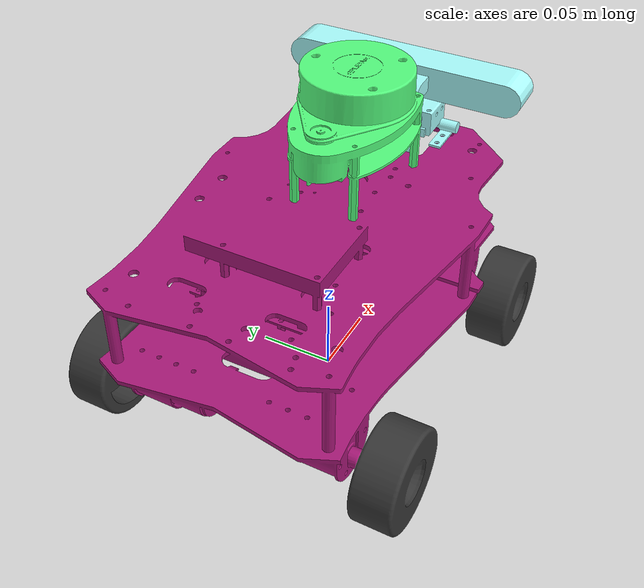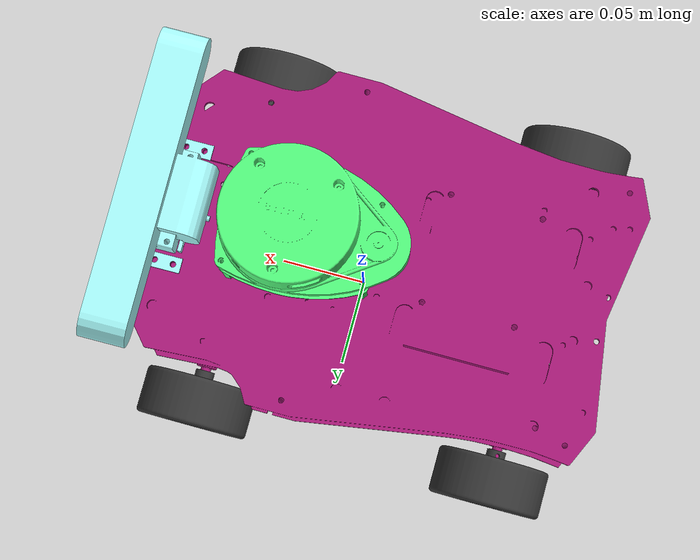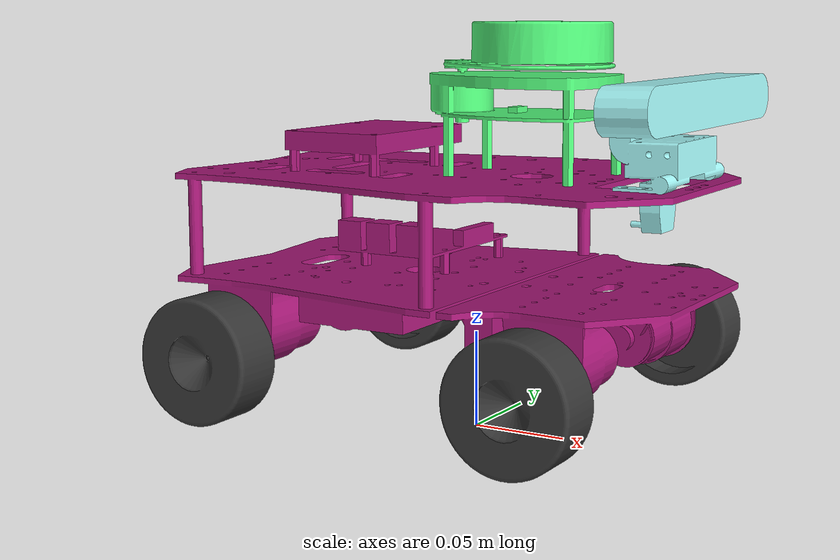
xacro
<?xml version="1.0"?>
<robot name="wheeltec" xmlns:xacro="http://www.ros.org/wiki/xacro">
  <xacro:arg name="prefix" default="" />
  <xacro:arg name="use_gazebo" default="false" />
  <xacro:property name="M_PI" value="3.1415926535897931" />
  <xacro:property name="laser_offset_x" value="0.036" />
  <xacro:property name="laser_offset_y" value="0.0015048" />
  <xacro:property name="laser_offset_z" value="0.13921" />
  <xacro:property name="laser_min_angle" value="-180" />
  <xacro:property name="laser_max_angle" value="180" />
  <xacro:property name="camera_offset_x" value="0.12521" />
  <xacro:property name="camera_offset_y" value="0.0017204" />
  <xacro:property name="camera_offset_z" value="0.10195" />
  <xacro:property name="front_wheel_position_x" value="0.0725" />
  <xacro:property name="left_wheel_position_y" value="0.08939" />
  <xacro:property name="right_wheel_position_y" value="-0.08661" />
  <xacro:property name="wheel_position_z" value="-0.026385" />
  <xacro:property name="rear_wheel_position_x" value="-0.1005" />
  <xacro:property name="wheel_mass" value="0.053774" />
  <xacro:property name="box_position_x" value="0" />
  <xacro:property name="box_position_y" value="0" />
  <xacro:property name="box_position_z" value="0.07" />
  <xacro:property name="box_length" value="0.27" />
  <xacro:property name="box_width" value="0.19" />
  <xacro:property name="box_height" value="0.075" />
  <xacro:property name="box_mass" value="0.6" />
  <xacro:property name="model_name" value="mini_4wd" />
  <xacro:property name="model_dir" value="$(find ugv_descriptions)/models/${model_name}" />
  <xacro:property name="urdf_dir" value="${model_dir}/urdf" />
  <xacro:property name="mesh_dir" value="package://ugv_descriptions/models/mini_4wd/meshes" />

  <xacro:macro name="box_inertial_matrix" params="m w h d">
    <inertial>
      <origin xyz="0 0 0.07" rpy="0 0 0" />
      <mass value="${m}" />
      <inertia ixx="${m*(d*d+h*h)/12}" ixy="0" ixz="0"
        iyy="${m*(w*w+h*h)/12}" iyz="0"
        izz="${m*(w*w+d*d)/12}" />
    </inertial>
  </xacro:macro>

  <xacro:include
    filename="${urdf_dir}/body.xacro" />

  <xacro:include
    filename="${urdf_dir}/wheels.xacro" />

  <xacro:include
    filename="${urdf_dir}/camera.xacro" />

  <xacro:include
    filename="${urdf_dir}/laser.xacro" />

  <xacro:include
    filename="${urdf_dir}/control.xacro" />

  <xacro:if value="$(arg use_gazebo)">
    <xacro:include
      filename="${urdf_dir}/gazebo.xacro" />
  </xacro:if>

</robot>

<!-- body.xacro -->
<robot xmlns:xacro="http://wiki.ros.org/xacro">

  <link name="$(arg prefix)dummy" />
  <joint name="$(arg prefix)base_link_join" type="fixed">
    <parent link="$(arg prefix)dummy" />
    <child link="$(arg prefix)base_link" />
    <origin xyz="${box_position_x} ${box_position_y} ${box_position_z}" rpy="0 0 0" />
  </joint>

  <link name="$(arg prefix)base_link">
    <xacro:box_inertial_matrix m="${box_mass}" d="${box_width}" h="${box_height}" w="${box_length}" />
    <visual>
      <geometry>
        <mesh filename="${mesh_dir}/base_link.DAE" />
      </geometry>
    </visual>
    <collision>
      <origin xyz="${box_position_x} ${box_position_y} ${box_position_z}" rpy="0 0 0" />
      <geometry>
        <box size="${box_length} ${box_width} ${box_height}" />
      </geometry>
    </collision>
  </link>

</robot>

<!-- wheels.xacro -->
<robot xmlns:xacro="http://wiki.ros.org/xacro">

  <xacro:macro name="create_wheel_link"
    params="
        link_name
        mesh_name
        xyz_offset
        *origin *mass *inertia">
    <link name="${link_name}">
      <visual>
        <origin xyz="0 0 0" rpy="0 0 0" />
        <geometry>
          <mesh filename="${mesh_dir}/${mesh_name}.DAE" />
        </geometry>
      </visual>
      <collision>
        <origin xyz="${xyz_offset}" rpy="${M_PI/2} 0 0" />
        <geometry>
          <cylinder radius="0.035" length="0.009" />
        </geometry>
      </collision>
      <inertial>
        <xacro:insert_block name="origin" />
        <xacro:insert_block name="mass" />
        <xacro:insert_block name="inertia" />
      </inertial>
    </link>
  </xacro:macro>

  <xacro:macro name="create_wheel_joint"
    params="
        joint_name
        link_name
        xyz_offset">
    <joint name="${joint_name}" type="continuous">
      <parent link="$(arg prefix)base_link" />
      <child link="${link_name}" />
      <origin rpy="0 0 0" xyz="${xyz_offset}" />
      <axis xyz="0 1 0" />
      <limit effort="3.9" velocity="36.92" />
    </joint>
  </xacro:macro>

  <xacro:create_wheel_link
    link_name="$(arg prefix)right_front_wheel_link"
    mesh_name="right_front_wheel_link"
    xyz_offset="0 -0.021 0">
    <origin xyz="6.832E-08 -0.0098111 -7.0676E-07" rpy="0 0 0" />
    <mass value="${wheel_mass}" />
    <inertia
      ixx="1.996E-05"
      ixy="-1.4777E-14"
      ixz="6.8928E-11"
      iyy="3.4111E-05"
      iyz="-1.8473E-15"
      izz="1.996E-05" />
  </xacro:create_wheel_link>

  <xacro:create_wheel_link
    link_name="$(arg prefix)left_front_wheel_link"
    mesh_name="left_front_wheel_link"
    xyz_offset="0 0.021 0">
    <origin xyz="-6.8329E-08 0.0098111 -7.0684E-07" rpy="0 0 0" />
    <mass value="${wheel_mass}" />
    <inertia
      ixx="1.996E-05"
      ixy="-1.4777E-14"
      ixz="6.8928E-11"
      iyy="3.4111E-05"
      iyz="-1.8473E-15"
      izz="1.996E-05" />
  </xacro:create_wheel_link>

  <xacro:create_wheel_link
    link_name="$(arg prefix)right_rear_wheel_link"
    mesh_name="right_rear_wheel_link"
    xyz_offset="0 -0.021 0">
    <origin xyz="6.832E-08 -0.0098111 -7.0676E-07" rpy="0 0 0" />
    <mass value="${wheel_mass}" />
    <inertia
      ixx="1.996E-05"
      ixy="-1.4777E-14"
      ixz="-6.8928E-11"
      iyy="3.4111E-05"
      iyz="1.8473E-15"
      izz="1.996E-05" />
  </xacro:create_wheel_link>

  <xacro:create_wheel_link
    link_name="$(arg prefix)left_rear_wheel_link"
    mesh_name="left_rear_wheel_link"
    xyz_offset="0 0.021 0">
    <origin xyz="-6.8366E-08 0.0098111 -7.068E-07" rpy="0 0 0" />
    <mass value="${wheel_mass}" />
    <inertia
      ixx="1.996E-05"
      ixy="-1.4777E-14"
      ixz="-6.8928E-11"
      iyy="3.4111E-05"
      iyz="1.8473E-15"
      izz="1.996E-05" />
  </xacro:create_wheel_link>

  <xacro:create_wheel_joint
    joint_name="$(arg prefix)right_front_wheel_joint"
    link_name="$(arg prefix)right_front_wheel_link"
    xyz_offset="0.0725 -0.08661 -0.026385"
  />
  <xacro:create_wheel_joint
    joint_name="$(arg prefix)left_front_wheel_joint"
    link_name="$(arg prefix)left_front_wheel_link"
    xyz_offset="0.0725 0.08939 -0.026385"
  />
  <xacro:create_wheel_joint
    joint_name="$(arg prefix)right_rear_wheel_joint"
    link_name="$(arg prefix)right_rear_wheel_link"
    xyz_offset="-0.1005 -0.08661 -0.026385"
  />
  <xacro:create_wheel_joint
    joint_name="$(arg prefix)left_rear_wheel_joint"
    link_name="$(arg prefix)left_rear_wheel_link"
    xyz_offset="-0.1005 0.08939 -0.026385"
  />
</robot>

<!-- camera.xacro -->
<robot xmlns:xacro="http://wiki.ros.org/xacro">
  <link name="$(arg prefix)camera_link">
    <xacro:box_inertial_matrix m="0.001" w="0.001" h="0.001" d="0.001" />
    <visual>
      <origin xyz="0 0 0" rpy="0 0 0 " />
      <geometry>
        <mesh filename="${mesh_dir}/camera_link.DAE" />
      </geometry>
    </visual>
    <collision>
      <origin xyz="0 0 0" rpy="0 0 0" />
      <geometry>
        <box size="0.046 0.165 0.077" />
      </geometry>
    </collision>
  </link>

  <link name="$(arg prefix)camera_frame_optical" />

  <joint name="$(arg prefix)camera_link_joint" type="fixed">
    <origin xyz="${camera_offset_x} ${camera_offset_y} ${camera_offset_z}" rpy="0 0 0" />
    <parent link="$(arg prefix)base_link" />
    <child link="$(arg prefix)camera_link" />
  </joint>

  <joint name="$(arg prefix)camera_optical_joint" type="fixed">
    <origin xyz="0 0 0" rpy="${-M_PI/2} 0 ${-M_PI/2}" />
    <parent link="$(arg prefix)camera_link" />
    <child link="$(arg prefix)camera_frame_optical" />
  </joint>
</robot>

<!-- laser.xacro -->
<robot xmlns:xacro="http://ros.org/wiki/xacro">

  <link name="$(arg prefix)laser_link">
    <xacro:box_inertial_matrix m="0.001" w="0.001" h="0.001" d="0.001" />
    <visual>
      <origin xyz=" 0 0 0 " rpy="0 0 0" />
      <geometry>
        <mesh
          filename="${mesh_dir}/laser_link.DAE" />
      </geometry>
    </visual>
    <collision>
      <origin xyz=" 0 0 0 " rpy="0 0 0" />
      <geometry>
        <box size="0.1 0.074 0.078" />
      </geometry>
    </collision>
  </link>

  <joint name="$(arg prefix)laser_joint" type="fixed">
    <origin xyz="${laser_offset_x} ${laser_offset_y} ${laser_offset_z}" rpy="0 0 0" />
    <parent link="$(arg prefix)base_link" />
    <child link="$(arg prefix)laser_link" />
  </joint>

</robot>
